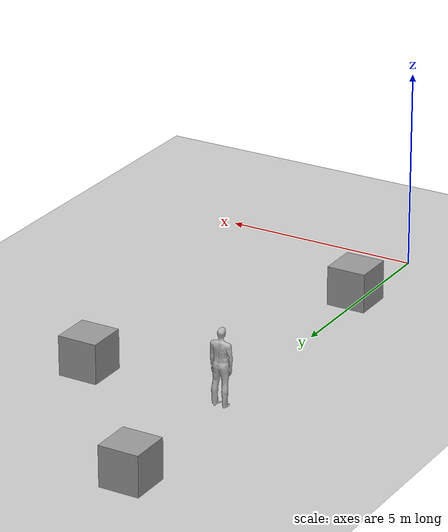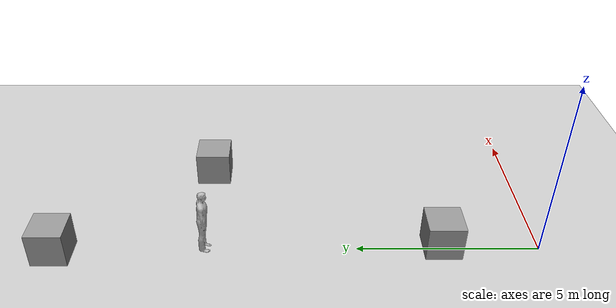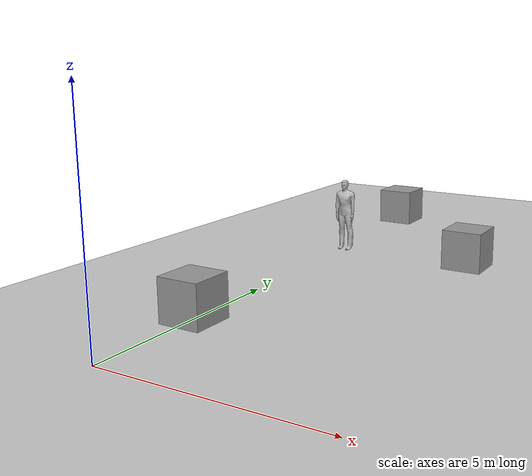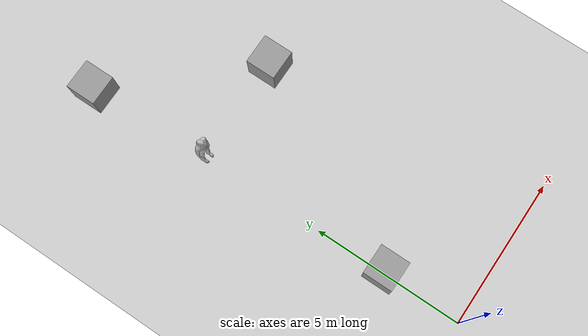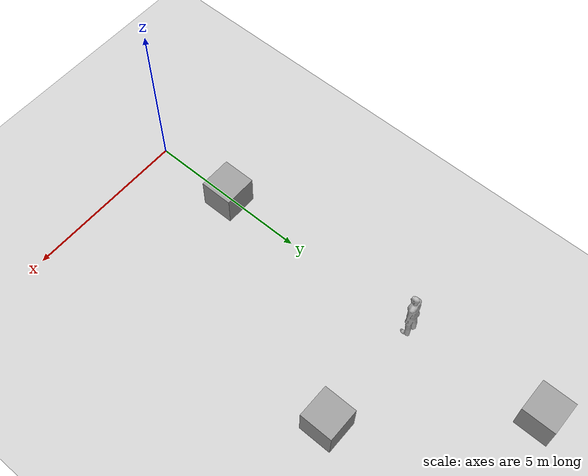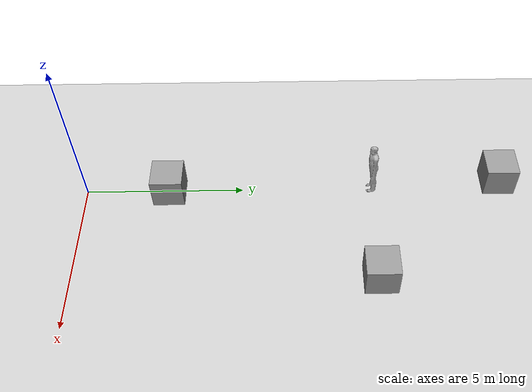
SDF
<sdf version="1.6">
 <world name="default">
  <light name="sun" type="directional">
   <pose>0 0 10 0 -0 0</pose>
   <diffuse>0.8 0.8 0.8 1</diffuse>
   <specular>0.1 0.1 0.1 1</specular>
   <attenuation>
    <range>1000</range>
    <constant>0.9</constant>
    <linear>0.01</linear>
    <quadratic>0.001</quadratic>
   </attenuation>
   <direction>-0.5 0.5 -1</direction>
  </light>
  <model name="ground_plane">
   <static>1</static>
   <link name="link">
    <collision name="collision">
     <geometry><plane><normal>0 0 1</normal><size>100 100</size></plane></geometry>
     <surface><friction><ode><mu>100</mu><mu2>50</mu2></ode></friction></surface>
    </collision>
    <visual name="visual">
     <cast_shadows>0</cast_shadows>
     <geometry><plane><normal>0 0 1</normal><size>100 100</size></plane></geometry>
     <material>
      <script><uri>file://media/materials/scripts/gazebo.material</uri><name>Gazebo/Grey</name></script>
     </material>
    </visual>
   </link>
  </model>
  <gravity>0 0 -9.8</gravity>
  <magnetic_field>6e-06 2.3e-05 -4.2e-05</magnetic_field>
  <atmosphere type="adiabatic"/>
  <physics name="default_physics" default="0" type="ode">
   <max_step_size>0.001</max_step_size>
   <real_time_factor>1</real_time_factor>
   <real_time_update_rate>1000</real_time_update_rate>
  </physics>
  <scene><ambient>0.4 0.4 0.4 1</ambient><background>0.7 0.7 0.7 1</background><shadows>1</shadows></scene>
  <spherical_coordinates>
   <surface_model>EARTH_WGS84</surface_model>
   <latitude_deg>0</latitude_deg>
   <longitude_deg>0</longitude_deg>
   <elevation>0</elevation>
   <heading_deg>0</heading_deg>
  </spherical_coordinates>
  <model name="unit_box_0">
   <pose>0.069699 2.66628 0.499995 0 1e-05 0</pose>
   <link name="link">
    <inertial>
     <mass>1</mass>
     <inertia>
      <ixx>0.166667</ixx>
      <ixy>0</ixy>
      <ixz>0</ixz>
      <iyy>0.166667</iyy>
      <iyz>0</iyz>
      <izz>0.166667</izz>
     </inertia>
    </inertial>
    <collision name="collision"><geometry><box><size>1 1 1</size></box></geometry></collision>
    <visual name="visual">
     <geometry><box><size>1 1 1</size></box></geometry>
     <material>
      <script><name>Gazebo/Grey</name><uri>file://media/materials/scripts/gazebo.material</uri></script>
     </material>
    </visual>
   </link>
  </model>
  <light name="user_directional_light_0" type="directional">
   <pose>-11.5684 32.5446 1 0 -0 0</pose>
   <diffuse>0.5 0.5 0.5 1</diffuse>
   <specular>0.1 0.1 0.1 1</specular>
   <direction>0.1 0.1 -0.9</direction>
   <attenuation>
    <range>20</range>
    <constant>0.5</constant>
    <linear>0.01</linear>
    <quadratic>0.001</quadratic>
   </attenuation>
  </light>
  <model name="person_standing">
   <link name="link">
    <inertial>
     <pose>0 -0.1 0.95 0 -0 0</pose>
     <mass>80</mass>
     <inertia><ixx>24.88</ixx><ixy>0</ixy><ixz>0</ixz><iyy>25.73</iyy><iyz>0</iyz><izz>2.48</izz></inertia>
    </inertial>
    <collision name="bottom">
     <pose>0 -0.1 0.01 0 -0 0</pose>
     <geometry><box><size>0.5 0.35 0.02</size></box></geometry>
    </collision>
    <collision name="person">
     <pose>0 0 0.02 0.04 -0 0</pose>
     <geometry><mesh><uri>model://person_standing/meshes/standing.dae</uri><scale>1 1 1</scale></mesh></geometry>
    </collision>
    <visual name="visual">
     <pose>0 0 0.02 0.04 -0 0</pose>
     <geometry><mesh><uri>model://person_standing/meshes/standing.dae</uri><scale>1 1 1</scale></mesh></geometry>
    </visual>
   </link>
   <pose>-0.005186 9.2386 -1e-06 -1e-06 1e-06 -0.000453</pose>
  </model>
  <model name="unit_box_1_0">
   <pose>3.51018 9.16566 0.499995 0 1e-05 0</pose>
   <link name="link">
    <inertial>
     <mass>1</mass>
     <inertia>
      <ixx>0.166667</ixx>
      <ixy>0</ixy>
      <ixz>0</ixz>
      <iyy>0.166667</iyy>
      <iyz>0</iyz>
      <izz>0.166667</izz>
     </inertia>
    </inertial>
    <collision name="collision"><geometry><box><size>1 1 1</size></box></geometry></collision>
    <visual name="visual">
     <geometry><box><size>1 1 1</size></box></geometry>
     <material>
      <script><name>Gazebo/Grey</name><uri>file://media/materials/scripts/gazebo.material</uri></script>
     </material>
    </visual>
   </link>
  </model>
  <model name="unit_box_1_1">
   <pose>-0.198201 13.2476 0.499995 0 1e-05 0</pose>
   <link name="link">
    <inertial>
     <mass>1</mass>
     <inertia>
      <ixx>0.166667</ixx>
      <ixy>0</ixy>
      <ixz>0</ixz>
      <iyy>0.166667</iyy>
      <iyz>0</iyz>
      <izz>0.166667</izz>
     </inertia>
    </inertial>
    <collision name="collision"><geometry><box><size>1 1 1</size></box></geometry></collision>
    <visual name="visual">
     <geometry><box><size>1 1 1</size></box></geometry>
     <material>
      <script><name>Gazebo/Grey</name><uri>file://media/materials/scripts/gazebo.material</uri></script>
     </material>
    </visual>
   </link>
  </model>
 </world>
</sdf>
